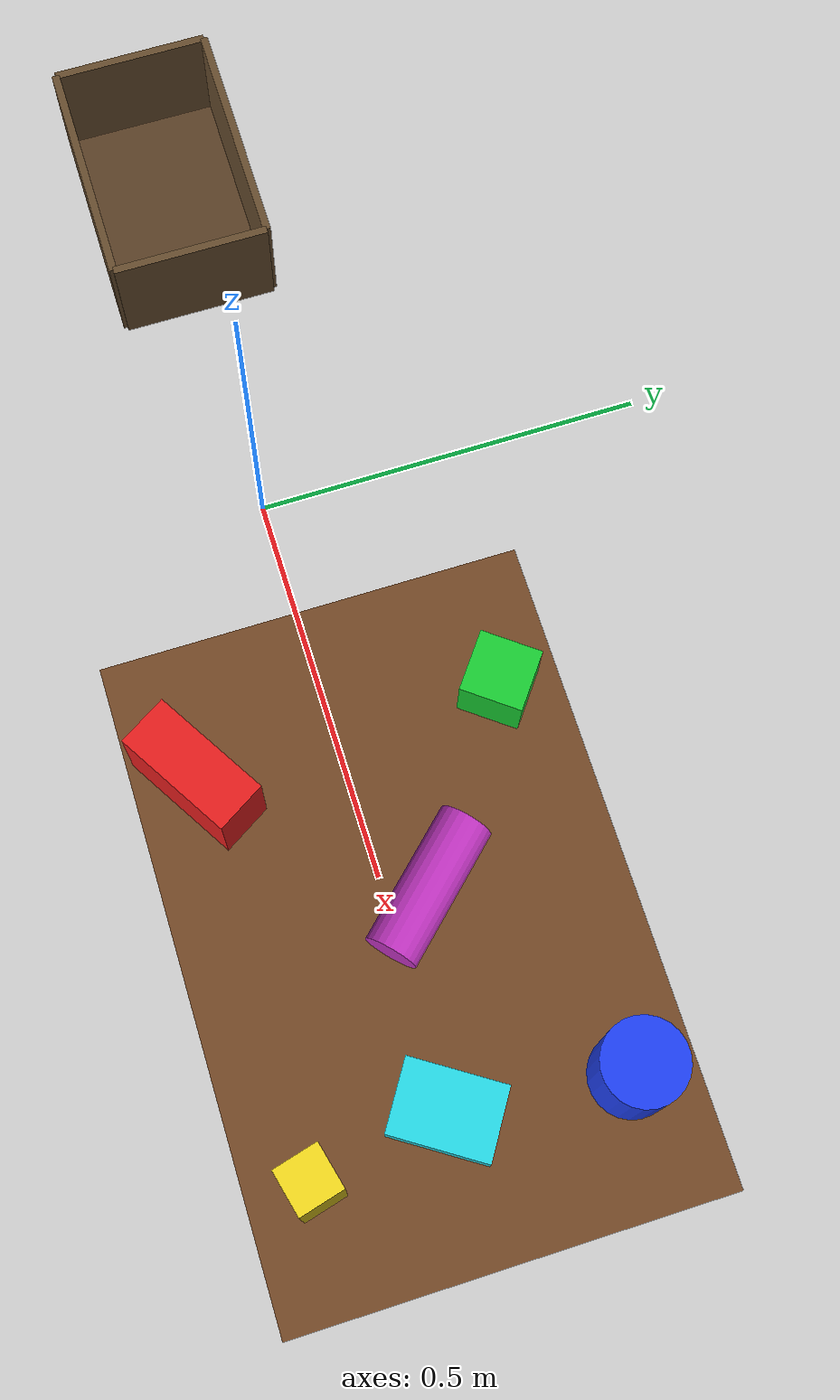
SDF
<sdf version='1.9'>
  <world name='vision_test_world'>
    <gravity>0 0 -9.8</gravity>
    <magnetic_field>6e-06 2.3e-05 -4.2e-05</magnetic_field>
    <atmosphere type='adiabatic'/>

    <physics type='ode'>
      <max_step_size>0.001</max_step_size>
      <real_time_factor>1</real_time_factor>
      <real_time_update_rate>1000</real_time_update_rate>
    </physics>

    <scene>
      <ambient>0.45 0.45 0.45 1</ambient>
      <background>0.75 0.78 0.82 1</background>
      <shadows>true</shadows>
    </scene>

    <light name='sun' type='directional'>
      <pose>0 0 10 0 0 0</pose>
      <cast_shadows>true</cast_shadows>
      <intensity>1.0</intensity>
      <direction>-0.5 0.2 -0.9</direction>
      <diffuse>0.85 0.85 0.85 1</diffuse>
      <specular>0.2 0.2 0.2 1</specular>
      <attenuation>
        <range>1000</range>
        <linear>0.01</linear>
        <constant>0.9</constant>
        <quadratic>0.001</quadratic>
      </attenuation>
    </light>

    <model name='ground_plane'>
      <static>true</static>
      <link name='link'>
        <collision name='collision'>
          <geometry>
            <plane>
              <normal>0 0 1</normal>
              <size>100 100</size>
            </plane>
          </geometry>
        </collision>
        <visual name='visual'>
          <geometry>
            <plane>
              <normal>0 0 1</normal>
              <size>100 100</size>
            </plane>
          </geometry>
          <material>
            <ambient>0.8 0.8 0.8 1</ambient>
            <diffuse>0.8 0.8 0.8 1</diffuse>
            <specular>0.8 0.8 0.8 1</specular>
          </material>
        </visual>
      </link>
    </model>

    <model name='vision_test_table'>
      <static>true</static>
      <link name='table_top'>
        <pose>0.60 0.0 0.24 0 0 0</pose>
        <collision name='table_collision'>
          <geometry>
            <box>
              <size>0.72 0.48 0.04</size>
            </box>
          </geometry>
        </collision>
        <visual name='table_visual'>
          <geometry>
            <box>
              <size>0.72 0.48 0.04</size>
            </box>
          </geometry>
          <material>
            <ambient>0.45 0.28 0.15 1</ambient>
            <diffuse>0.45 0.28 0.15 1</diffuse>
          </material>
        </visual>
      </link>
    </model>

    <model name='table_leg_front_left'>
      <static>true</static>
      <link name='link'>
        <pose>0.34 0.18 0.11 0 0 0</pose>
        <collision name='collision'>
          <geometry>
            <box>
              <size>0.04 0.04 0.22</size>
            </box>
          </geometry>
        </collision>
        <visual name='visual'>
          <geometry>
            <box>
              <size>0.04 0.04 0.22</size>
            </box>
          </geometry>
          <material>
            <ambient>0.32 0.18 0.08 1</ambient>
            <diffuse>0.32 0.18 0.08 1</diffuse>
          </material>
        </visual>
      </link>
    </model>

    <model name='table_leg_front_right'>
      <static>true</static>
      <link name='link'>
        <pose>0.86 0.18 0.11 0 0 0</pose>
        <collision name='collision'>
          <geometry>
            <box>
              <size>0.04 0.04 0.22</size>
            </box>
          </geometry>
        </collision>
        <visual name='visual'>
          <geometry>
            <box>
              <size>0.04 0.04 0.22</size>
            </box>
          </geometry>
          <material>
            <ambient>0.32 0.18 0.08 1</ambient>
            <diffuse>0.32 0.18 0.08 1</diffuse>
          </material>
        </visual>
      </link>
    </model>

    <model name='table_leg_back_left'>
      <static>true</static>
      <link name='link'>
        <pose>0.34 -0.18 0.11 0 0 0</pose>
        <collision name='collision'>
          <geometry>
            <box>
              <size>0.04 0.04 0.22</size>
            </box>
          </geometry>
        </collision>
        <visual name='visual'>
          <geometry>
            <box>
              <size>0.04 0.04 0.22</size>
            </box>
          </geometry>
          <material>
            <ambient>0.32 0.18 0.08 1</ambient>
            <diffuse>0.32 0.18 0.08 1</diffuse>
          </material>
        </visual>
      </link>
    </model>

    <model name='table_leg_back_right'>
      <static>true</static>
      <link name='link'>
        <pose>0.86 -0.18 0.11 0 0 0</pose>
        <collision name='collision'>
          <geometry>
            <box>
              <size>0.04 0.04 0.22</size>
            </box>
          </geometry>
        </collision>
        <visual name='visual'>
          <geometry>
            <box>
              <size>0.04 0.04 0.22</size>
            </box>
          </geometry>
          <material>
            <ambient>0.32 0.18 0.08 1</ambient>
            <diffuse>0.32 0.18 0.08 1</diffuse>
          </material>
        </visual>
      </link>
    </model>

    <model name='red_brick'>
      <static>false</static>
      <pose>0.40 -0.17 0.31 0 0 0.55</pose>
      <link name='link'>
        <collision name='collision'>
          <geometry>
            <box>
              <size>0.14 0.06 0.10</size>
            </box>
          </geometry>
        </collision>
        <visual name='visual'>
          <geometry>
            <box>
              <size>0.14 0.06 0.10</size>
            </box>
          </geometry>
          <material>
            <ambient>0.9 0.12 0.12 1</ambient>
            <diffuse>0.9 0.12 0.12 1</diffuse>
          </material>
        </visual>
      </link>
    </model>

    <model name='blue_cylinder'>
      <static>false</static>
      <pose>0.82 0.17 0.32 0 0 0.15</pose>
      <link name='link'>
        <collision name='collision'>
          <geometry>
            <cylinder>
              <radius>0.045</radius>
              <length>0.12</length>
            </cylinder>
          </geometry>
        </collision>
        <visual name='visual'>
          <geometry>
            <cylinder>
              <radius>0.045</radius>
              <length>0.12</length>
            </cylinder>
          </geometry>
          <material>
            <ambient>0.12 0.25 0.95 1</ambient>
            <diffuse>0.12 0.25 0.95 1</diffuse>
          </material>
        </visual>
      </link>
    </model>

    <model name='green_box_small'>
      <static>false</static>
      <pose>0.39 0.17 0.295 0 0 -0.65</pose>
      <link name='link'>
        <collision name='collision'>
          <geometry>
            <box>
              <size>0.07 0.07 0.07</size>
            </box>
          </geometry>
        </collision>
        <visual name='visual'>
          <geometry>
            <box>
              <size>0.07 0.07 0.07</size>
            </box>
          </geometry>
          <material>
            <ambient>0.1 0.8 0.2 1</ambient>
            <diffuse>0.1 0.8 0.2 1</diffuse>
          </material>
        </visual>
      </link>
    </model>

    <model name='yellow_tall_box'>
      <static>false</static>
      <pose>0.83 -0.17 0.335 0 0 0.25</pose>
      <link name='link'>
        <collision name='collision'>
          <geometry>
            <box>
              <size>0.05 0.05 0.15</size>
            </box>
          </geometry>
        </collision>
        <visual name='visual'>
          <geometry>
            <box>
              <size>0.05 0.05 0.15</size>
            </box>
          </geometry>
          <material>
            <ambient>0.95 0.85 0.12 1</ambient>
            <diffuse>0.95 0.85 0.12 1</diffuse>
          </material>
        </visual>
      </link>
    </model>

    <model name='magenta_cylinder_sideways'>
      <static>false</static>
      <pose>0.58 0.03 0.29 1.57 0 0.75</pose>
      <link name='link'>
        <collision name='collision'>
          <geometry>
            <cylinder>
              <radius>0.03</radius>
              <length>0.16</length>
            </cylinder>
          </geometry>
        </collision>
        <visual name='visual'>
          <geometry>
            <cylinder>
              <radius>0.03</radius>
              <length>0.16</length>
            </cylinder>
          </geometry>
          <material>
            <ambient>0.75 0.2 0.75 1</ambient>
            <diffuse>0.75 0.2 0.75 1</diffuse>
          </material>
        </visual>
      </link>
    </model>

    <model name='cyan_flat_box'>
      <static>false</static>
      <pose>0.80 -0.02 0.275 0 0 1.0</pose>
      <link name='link'>
        <collision name='collision'>
          <geometry>
            <box>
              <size>0.11 0.08 0.03</size>
            </box>
          </geometry>
        </collision>
        <visual name='visual'>
          <geometry>
            <box>
              <size>0.11 0.08 0.03</size>
            </box>
          </geometry>
          <material>
            <ambient>0.15 0.85 0.9 1</ambient>
            <diffuse>0.15 0.85 0.9 1</diffuse>
          </material>
        </visual>
      </link>
    </model>

    <model name='deposit_box'>
      <static>true</static>
      <pose>-0.45 0 0 0 0 0</pose>

      <link name='bottom'>
        <pose>0 0 0.005 0 0 0</pose>
        <collision name='collision'>
          <geometry><box><size>0.30 0.20 0.01</size></box></geometry>
        </collision>
        <visual name='visual'>
          <geometry><box><size>0.30 0.20 0.01</size></box></geometry>
          <material>
            <ambient>0.35 0.25 0.15 1</ambient>
            <diffuse>0.35 0.25 0.15 1</diffuse>
          </material>
        </visual>
      </link>

      <link name='wall_front'>
        <pose>0.15 0 0.08 0 0 0</pose>
        <collision name='collision'>
          <geometry><box><size>0.01 0.20 0.15</size></box></geometry>
        </collision>
        <visual name='visual'>
          <geometry><box><size>0.01 0.20 0.15</size></box></geometry>
          <material>
            <ambient>0.40 0.30 0.18 1</ambient>
            <diffuse>0.40 0.30 0.18 1</diffuse>
          </material>
        </visual>
      </link>

      <link name='wall_back'>
        <pose>-0.15 0 0.08 0 0 0</pose>
        <collision name='collision'>
          <geometry><box><size>0.01 0.20 0.15</size></box></geometry>
        </collision>
        <visual name='visual'>
          <geometry><box><size>0.01 0.20 0.15</size></box></geometry>
          <material>
            <ambient>0.40 0.30 0.18 1</ambient>
            <diffuse>0.40 0.30 0.18 1</diffuse>
          </material>
        </visual>
      </link>

      <link name='wall_left'>
        <pose>0 0.10 0.08 0 0 0</pose>
        <collision name='collision'>
          <geometry><box><size>0.30 0.01 0.15</size></box></geometry>
        </collision>
        <visual name='visual'>
          <geometry><box><size>0.30 0.01 0.15</size></box></geometry>
          <material>
            <ambient>0.40 0.30 0.18 1</ambient>
            <diffuse>0.40 0.30 0.18 1</diffuse>
          </material>
        </visual>
      </link>

      <link name='wall_right'>
        <pose>0 -0.10 0.08 0 0 0</pose>
        <collision name='collision'>
          <geometry><box><size>0.30 0.01 0.15</size></box></geometry>
        </collision>
        <visual name='visual'>
          <geometry><box><size>0.30 0.01 0.15</size></box></geometry>
          <material>
            <ambient>0.40 0.30 0.18 1</ambient>
            <diffuse>0.40 0.30 0.18 1</diffuse>
          </material>
        </visual>
      </link>
    </model>
  </world>
</sdf>
